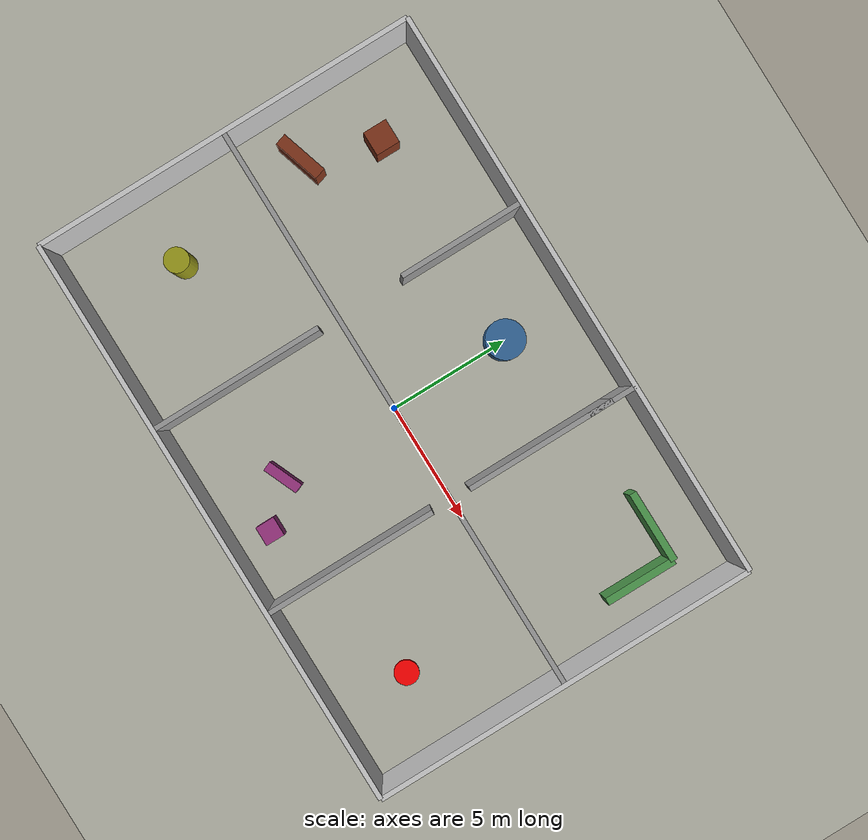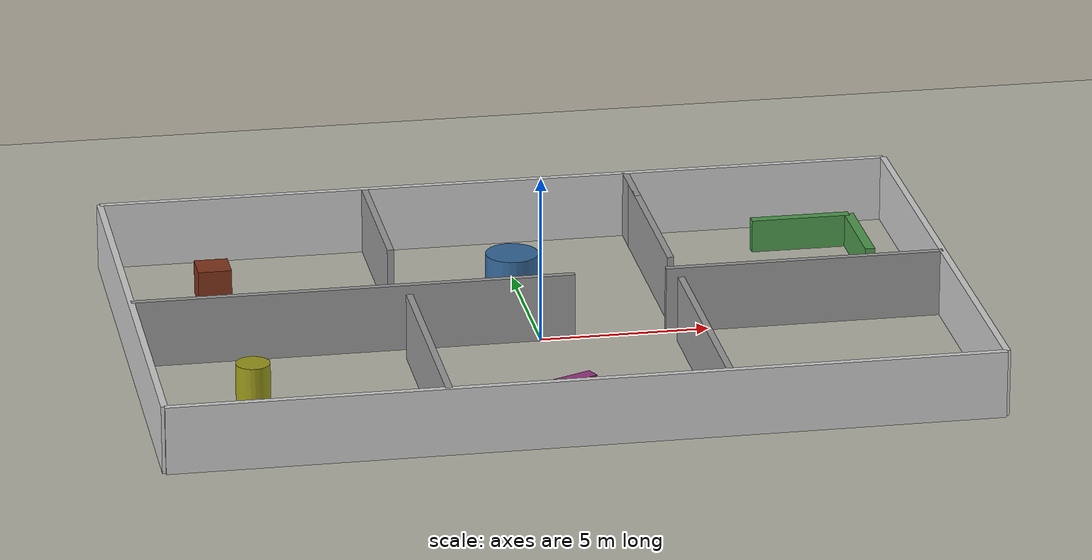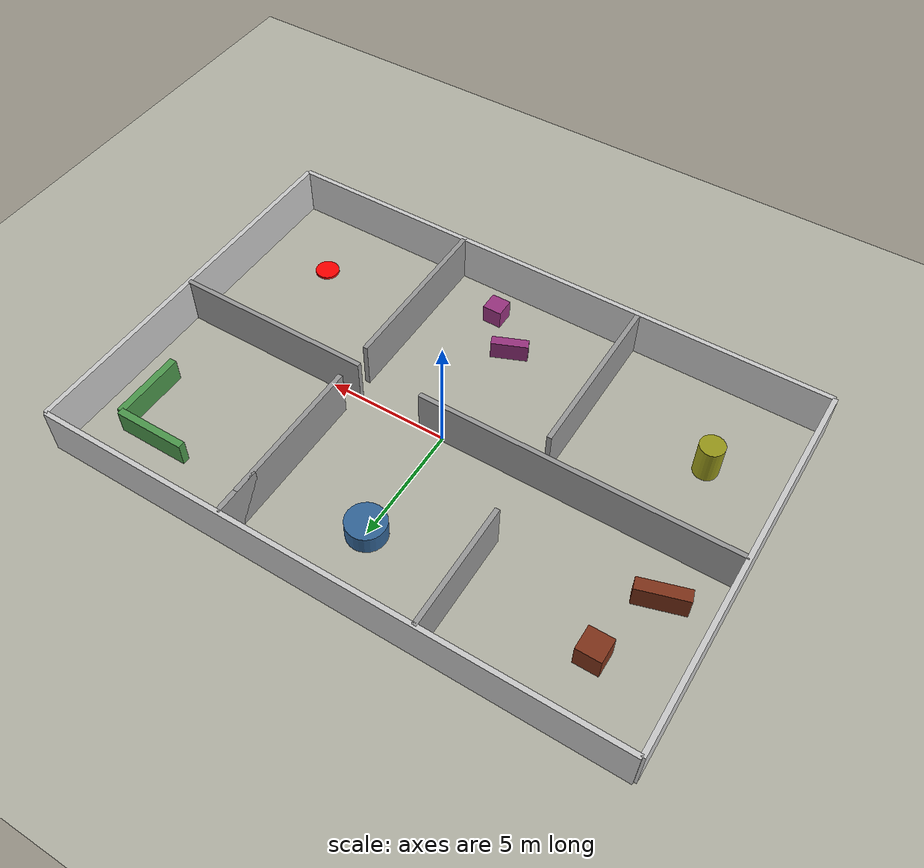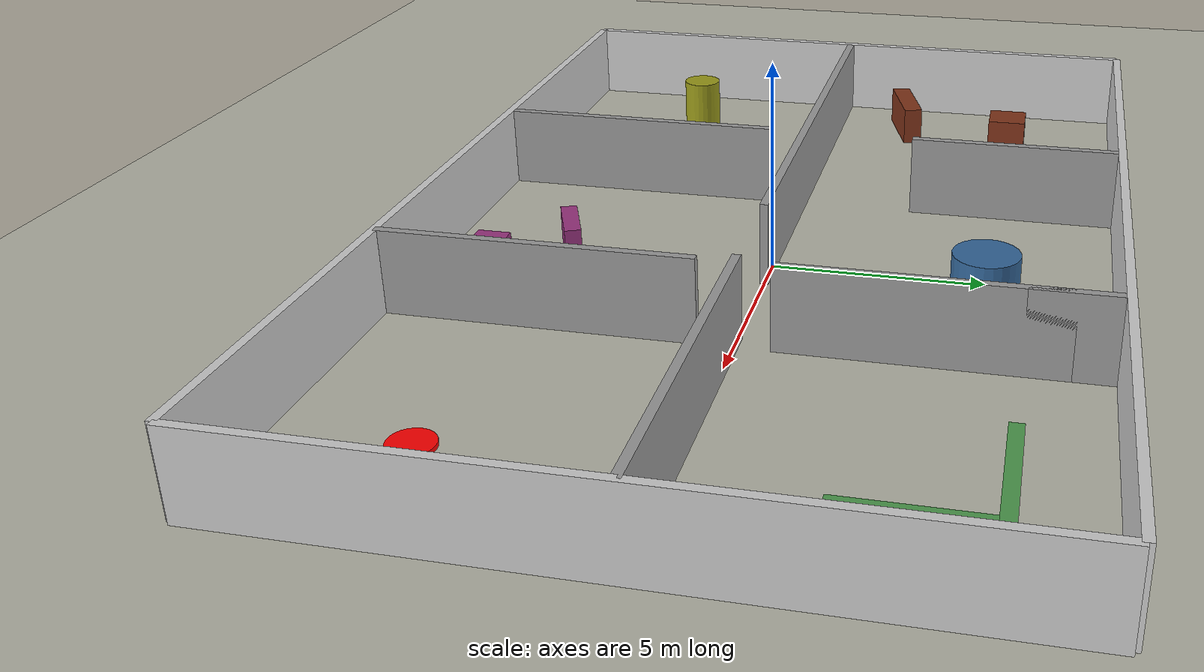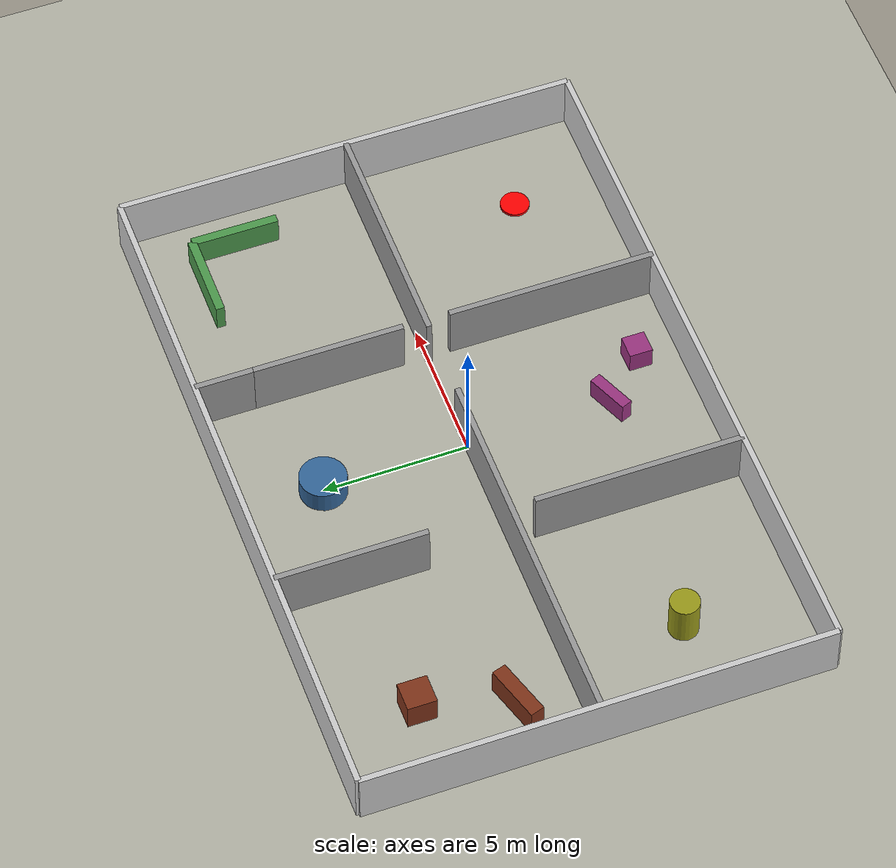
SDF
<?xml version="1.0" ?>
<sdf version="1.6">
  <world name="building_rooms">

    <physics name="default_physics" type="ode">
      <max_step_size>0.001</max_step_size>
      <real_time_factor>1</real_time_factor>
      <real_time_update_rate>1000</real_time_update_rate>
    </physics>

    <gravity>0 0 -9.8</gravity>

    <light name="sun" type="directional">
      <cast_shadows>true</cast_shadows>
      <pose>0 0 15 0 0 0</pose>
      <diffuse>0.9 0.9 0.9 1</diffuse>
      <specular>0.3 0.3 0.3 1</specular>
      <direction>-0.5 0.1 -0.9</direction>
    </light>

    <!-- Suelo -->
    <model name="ground_plane">
      <static>true</static>
      <link name="link">
        <collision name="collision">
          <geometry><plane><normal>0 0 1</normal><size>40 30</size></plane></geometry>
        </collision>
        <visual name="visual">
          <geometry><plane><normal>0 0 1</normal><size>40 30</size></plane></geometry>
          <material><ambient>0.7 0.7 0.65 1</ambient><diffuse>0.7 0.7 0.65 1</diffuse></material>
        </visual>
      </link>
    </model>

    <!-- MUROS EXTERIORES DEL EDIFICIO (24m x 16m)                    -->

    <model name="ext_north">
      <static>true</static><pose>0 8 1 0 0 0</pose>
      <link name="link">
        <collision name="collision"><geometry><box><size>24 0.2 2</size></box></geometry></collision>
        <visual name="visual"><geometry><box><size>24 0.2 2</size></box></geometry>
          <material><ambient>0.8 0.8 0.8 1</ambient><diffuse>0.8 0.8 0.8 1</diffuse></material>
        </visual>
      </link>
    </model>

    <model name="ext_south">
      <static>true</static><pose>0 -8 1 0 0 0</pose>
      <link name="link">
        <collision name="collision"><geometry><box><size>24 0.2 2</size></box></geometry></collision>
        <visual name="visual"><geometry><box><size>24 0.2 2</size></box></geometry>
          <material><ambient>0.8 0.8 0.8 1</ambient><diffuse>0.8 0.8 0.8 1</diffuse></material>
        </visual>
      </link>
    </model>

    <model name="ext_east">
      <static>true</static><pose>12 0 1 0 0 0</pose>
      <link name="link">
        <collision name="collision"><geometry><box><size>0.2 16 2</size></box></geometry></collision>
        <visual name="visual"><geometry><box><size>0.2 16 2</size></box></geometry>
          <material><ambient>0.8 0.8 0.8 1</ambient><diffuse>0.8 0.8 0.8 1</diffuse></material>
        </visual>
      </link>
    </model>

    <model name="ext_west">
      <static>true</static><pose>-12 0 1 0 0 0</pose>
      <link name="link">
        <collision name="collision"><geometry><box><size>0.2 16 2</size></box></geometry></collision>
        <visual name="visual"><geometry><box><size>0.2 16 2</size></box></geometry>
          <material><ambient>0.8 0.8 0.8 1</ambient><diffuse>0.8 0.8 0.8 1</diffuse></material>
        </visual>
      </link>
    </model>

    <!-- MUROS INTERNOS - DIVISIONES DE HABITACIONES                   -->
    <!-- Layout: 3 columnas x 2 filas = 6 habitaciones                -->
    <!-- Hab1(NO) | Hab2(NC) | Hab3(NE)                               -->
    <!-- Hab4(SO) | Hab5(SC) | Hab6(SE)                               -->

    <!-- Muro horizontal central (divide norte/sur) -->
    <!-- Segmento oeste con apertura en pasillo central -->
    <model name="int_h_west">
      <static>true</static><pose>-5.5 0 1 0 0 0</pose>
      <link name="link">
        <collision name="collision"><geometry><box><size>13 0.2 2</size></box></geometry></collision>
        <visual name="visual"><geometry><box><size>13 0.2 2</size></box></geometry>
          <material><ambient>0.6 0.6 0.6 1</ambient><diffuse>0.6 0.6 0.6 1</diffuse></material>
        </visual>
      </link>
    </model>

    <!-- Segmento este (apertura de 1.2m en x=1.5 a x=2.7) -->
    <model name="int_h_east">
      <static>true</static><pose>7.85 0 1 0 0 0</pose>
      <link name="link">
        <collision name="collision"><geometry><box><size>8.3 0.2 2</size></box></geometry></collision>
        <visual name="visual"><geometry><box><size>8.3 0.2 2</size></box></geometry>
          <material><ambient>0.6 0.6 0.6 1</ambient><diffuse>0.6 0.6 0.6 1</diffuse></material>
        </visual>
      </link>
    </model>

    <!-- Muro vertical izquierdo (divide Hab1/Hab2 y Hab4/Hab5) -->
    <!-- Norte: apertura en y=5 a y=6.2 -->
    <model name="int_v_left_n">
      <static>true</static><pose>-4 5.4 1 0 0 0</pose>
      <link name="link">
        <collision name="collision"><geometry><box><size>0.2 5.2 2</size></box></geometry></collision>
        <visual name="visual"><geometry><box><size>0.2 5.2 2</size></box></geometry>
          <material><ambient>0.6 0.6 0.6 1</ambient><diffuse>0.6 0.6 0.6 1</diffuse></material>
        </visual>
      </link>
    </model>

    <model name="int_v_left_s">
      <static>true</static><pose>-4 -4.4 1 0 0 0</pose>
      <link name="link">
        <collision name="collision"><geometry><box><size>0.2 7.2 2</size></box></geometry></collision>
        <visual name="visual"><geometry><box><size>0.2 7.2 2</size></box></geometry>
          <material><ambient>0.6 0.6 0.6 1</ambient><diffuse>0.6 0.6 0.6 1</diffuse></material>
        </visual>
      </link>
    </model>

    <!-- Muro vertical derecho (divide Hab2/Hab3 y Hab5/Hab6) -->
    <model name="int_v_right_n">
      <static>true</static><pose>4 7 1 0 0 0</pose>
      <link name="link">
        <collision name="collision"><geometry><box><size>0.2 2 2</size></box></geometry></collision>
        <visual name="visual"><geometry><box><size>0.2 2 2</size></box></geometry>
          <material><ambient>0.6 0.6 0.6 1</ambient><diffuse>0.6 0.6 0.6 1</diffuse></material>
        </visual>
      </link>
    </model>

    <model name="int_v_right_ns">
      <static>true</static><pose>4 3.9 1 0 0 0</pose>
      <link name="link">
        <collision name="collision"><geometry><box><size>0.2 6.2 2</size></box></geometry></collision>
        <visual name="visual"><geometry><box><size>0.2 6.2 2</size></box></geometry>
          <material><ambient>0.6 0.6 0.6 1</ambient><diffuse>0.6 0.6 0.6 1</diffuse></material>
        </visual>
      </link>
    </model>

    <model name="int_v_right_s">
      <static>true</static><pose>4 -4.4 1 0 0 0</pose>
      <link name="link">
        <collision name="collision"><geometry><box><size>0.2 7.2 2</size></box></geometry></collision>
        <visual name="visual"><geometry><box><size>0.2 7.2 2</size></box></geometry>
          <material><ambient>0.6 0.6 0.6 1</ambient><diffuse>0.6 0.6 0.6 1</diffuse></material>
        </visual>
      </link>
    </model>

    <!-- MOBILIARIO / OBSTÁCULOS POR HABITACIÓN                        -->
    <!-- Cada hab tiene obstáculos únicos para forzar exploración SLAM  -->

    <!-- HAB 1 (Noroeste) - Contenedores apilados -->
    <model name="hab1_box1"><static>true</static><pose>-9 5 0.5 0 0 0</pose>
      <link name="link">
        <collision name="collision"><geometry><box><size>1 1 1</size></box></geometry></collision>
        <visual name="visual"><geometry><box><size>1 1 1</size></box></geometry>
          <material><ambient>0.5 0.2 0.1 1</ambient><diffuse>0.5 0.2 0.1 1</diffuse></material>
        </visual>
      </link>
    </model>
    <model name="hab1_box2"><static>true</static><pose>-10 2 0.5 0 0 0.3</pose>
      <link name="link">
        <collision name="collision"><geometry><box><size>2 0.5 1</size></box></geometry></collision>
        <visual name="visual"><geometry><box><size>2 0.5 1</size></box></geometry>
          <material><ambient>0.5 0.2 0.1 1</ambient><diffuse>0.5 0.2 0.1 1</diffuse></material>
        </visual>
      </link>
    </model>

    <!-- HAB 2 (Norcentro) - Mesa central (cilindro) -->
    <model name="hab2_table"><static>true</static><pose>0 5 0.4 0 0 0</pose>
      <link name="link">
        <collision name="collision"><geometry><cylinder><radius>0.8</radius><length>0.8</length></cylinder></geometry></collision>
        <visual name="visual"><geometry><cylinder><radius>0.8</radius><length>0.8</length></cylinder></geometry>
          <material><ambient>0.2 0.4 0.6 1</ambient><diffuse>0.2 0.4 0.6 1</diffuse></material>
        </visual>
      </link>
    </model>

    <!-- HAB 3 (Noreste) - Paredes internas en L -->
    <model name="hab3_lwall1"><static>true</static><pose>9 6 0.5 0 0 0</pose>
      <link name="link">
        <collision name="collision"><geometry><box><size>3 0.3 1</size></box></geometry></collision>
        <visual name="visual"><geometry><box><size>3 0.3 1</size></box></geometry>
          <material><ambient>0.3 0.6 0.3 1</ambient><diffuse>0.3 0.6 0.3 1</diffuse></material>
        </visual>
      </link>
    </model>
    <model name="hab3_lwall2"><static>true</static><pose>10.5 4.5 0.5 0 0 0</pose>
      <link name="link">
        <collision name="collision"><geometry><box><size>0.3 3 1</size></box></geometry></collision>
        <visual name="visual"><geometry><box><size>0.3 3 1</size></box></geometry>
          <material><ambient>0.3 0.6 0.3 1</ambient><diffuse>0.3 0.6 0.3 1</diffuse></material>
        </visual>
      </link>
    </model>

    <!-- HAB 4 (Suroeste) - Columna central -->
    <model name="hab4_pillar"><static>true</static><pose>-9 -4 0.75 0 0 0</pose>
      <link name="link">
        <collision name="collision"><geometry><cylinder><radius>0.5</radius><length>1.5</length></cylinder></geometry></collision>
        <visual name="visual"><geometry><cylinder><radius>0.5</radius><length>1.5</length></cylinder></geometry>
          <material><ambient>0.6 0.6 0.1 1</ambient><diffuse>0.6 0.6 0.1 1</diffuse></material>
        </visual>
      </link>
    </model>

    <!-- HAB 5 (Surcentro) - Obstáculos dispersos -->
    <model name="hab5_obj1"><static>true</static><pose>0 -5 0.4 0 0 0.4</pose>
      <link name="link">
        <collision name="collision"><geometry><box><size>1.5 0.4 0.8</size></box></geometry></collision>
        <visual name="visual"><geometry><box><size>1.5 0.4 0.8</size></box></geometry>
          <material><ambient>0.6 0.2 0.5 1</ambient><diffuse>0.6 0.2 0.5 1</diffuse></material>
        </visual>
      </link>
    </model>
    <model name="hab5_obj2"><static>true</static><pose>1.5 -6.5 0.4 0 0 0</pose>
      <link name="link">
        <collision name="collision"><geometry><box><size>0.8 0.8 0.8</size></box></geometry></collision>
        <visual name="visual"><geometry><box><size>0.8 0.8 0.8</size></box></geometry>
          <material><ambient>0.6 0.2 0.5 1</ambient><diffuse>0.6 0.2 0.5 1</diffuse></material>
        </visual>
      </link>
    </model>

    <!-- HAB 6 (Sureste) - Zona de objetivo (marcador rojo) -->
    <model name="hab6_target"><static>true</static><pose>9 -5 0.05 0 0 0</pose>
      <link name="link">
        <collision name="collision"><geometry><cylinder><radius>0.5</radius><length>0.1</length></cylinder></geometry></collision>
        <visual name="visual"><geometry><cylinder><radius>0.5</radius><length>0.1</length></cylinder></geometry>
          <material><ambient>1 0 0 1</ambient><diffuse>1 0 0 1</diffuse></material>
        </visual>
      </link>
    </model>

    <!-- Spawn sugerido agentes:                                        -->
    <!-- Agente 1: pose="-10 -7 0.1 0 0 0"  (entrada Hab4, Suroeste)  -->
    <!-- Agente 2: pose="-10  7 0.1 0 0 0"  (entrada Hab1, Noroeste)  -->
    <!-- Objetivo: pose="9   -5 0.1 0 0 0"  (Hab6, Sureste)           -->

  </world>
</sdf>
